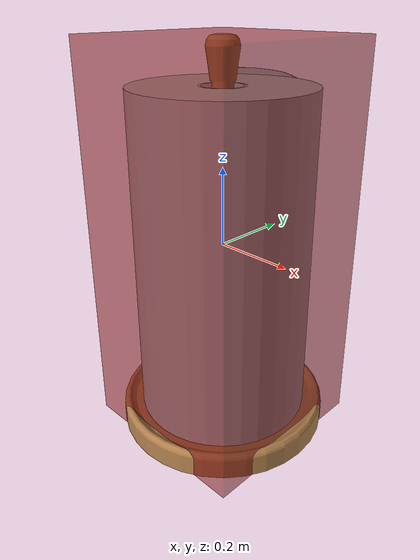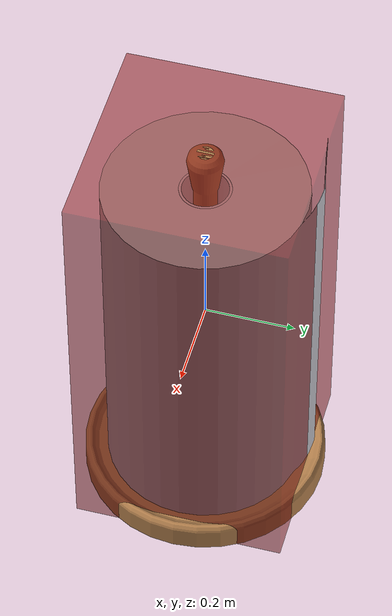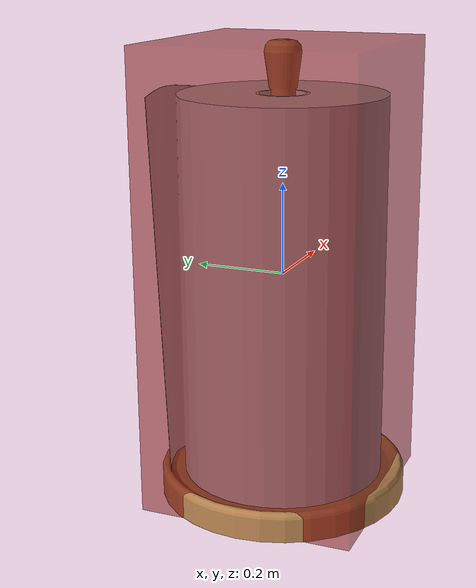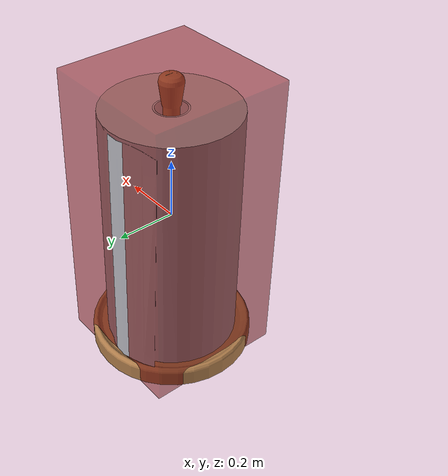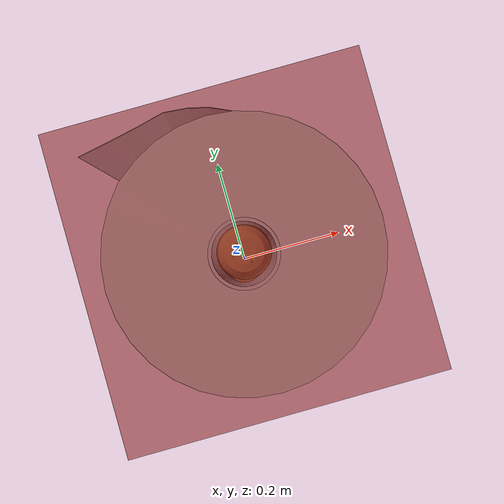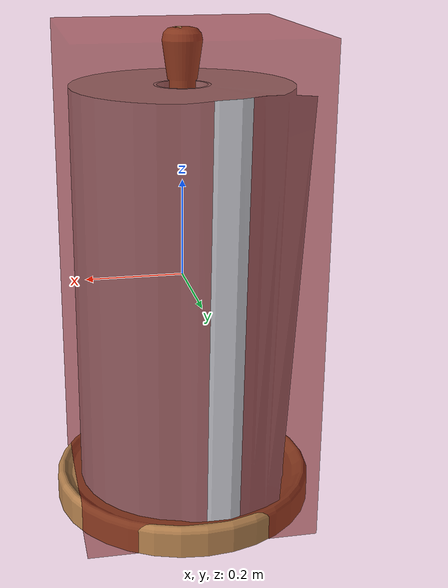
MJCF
<mujoco model="model">
  <asset>
    <texture file="visuals/material_0.png" name="tex-model" type="2d"/>
    <texture type="2d" name="image3" file="visuals/image3.png"/>
    <texture type="2d" name="image0" file="visuals/image0.png"/>
    <material name="model" reflectance="0.5" texrepeat="1 1" texture="tex-model" texuniform="false"/>
    <material name="MI_Plastic_Smooth_Low_White" specular="0.5" shininess="0.639999995" rgba="0.801495 0.801495 0.801495 1.0"/>
    <material name="M_Glass_Incolor_Refra_High" specular="0.5" shininess="0.809999997" rgba="0.800000 0.800000 0.800000 1.0"/>
    <material name="Silver_Ag_scnpagqp_inst" texture="image3" specular="0.5" shininess="0.25"/>
    <material name="wood_036" texture="image0" specular="0.5" shininess="0.25"/>
    <mesh file="visuals/model_0.obj" name="model_0_vis" scale="1 1 1"/>
    <mesh file="visuals/model_1.obj" name="model_1_vis" scale="1 1 1"/>
    <mesh file="visuals/model_2.obj" name="model_2_vis" scale="1 1 1"/>
    <mesh file="visuals/model_3.obj" name="model_3_vis" scale="1 1 1"/>
  </asset>
  <default>
    <default class="visual">
      <geom conaffinity="0" contype="0" group="1" type="mesh"/>
    </default>
    <default class="collision">
      <geom group="0" rgba="0.5 0 0 0.5"/>
    </default>
    <default class="region">
      <geom group="1" conaffinity="0" contype="0" rgba="0 1 0 0"/>
    </default>
  </default>
  <worldbody>
    <body>
      <!-- exterior bounding box points -->
      <!-- interior bounding box points -->
      <body name="object">
        <geom solimp="0.998 0.998 0.001" solref="0.001 1" density="100" friction="0.95 0.3 0.1" type="mesh" mesh="model_0_vis" material="M_Glass_Incolor_Refra_High" class="visual"/>
        <geom solimp="0.998 0.998 0.001" solref="0.001 1" density="100" friction="0.95 0.3 0.1" type="mesh" mesh="model_1_vis" material="MI_Plastic_Smooth_Low_White" class="visual"/>
        <geom solimp="0.998 0.998 0.001" solref="0.001 1" density="100" friction="0.95 0.3 0.1" type="mesh" mesh="model_2_vis" material="Silver_Ag_scnpagqp_inst" class="visual"/>
        <geom solimp="0.998 0.998 0.001" solref="0.001 1" density="100" friction="0.95 0.3 0.1" type="mesh" mesh="model_3_vis" material="wood_036" class="visual"/>
        <geom class="collision" type="box" pos="0 0 0" size="0.2356398338793433 0.237730436035404 0.5"/>
        <geom class="region" name="reg_main" type="box" pos="0.0 0.0 0.0" size="0.2356398338793433 0.237730436035404 0.5"/>
      </body>
    </body>
  </worldbody>
</mujoco>
